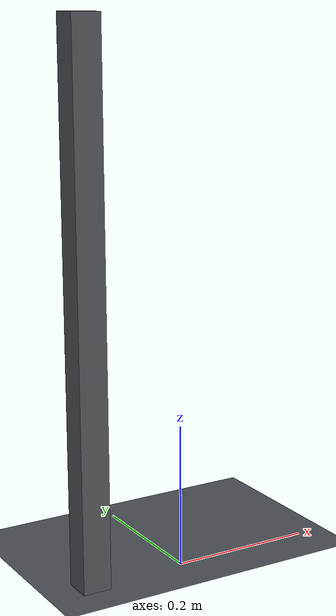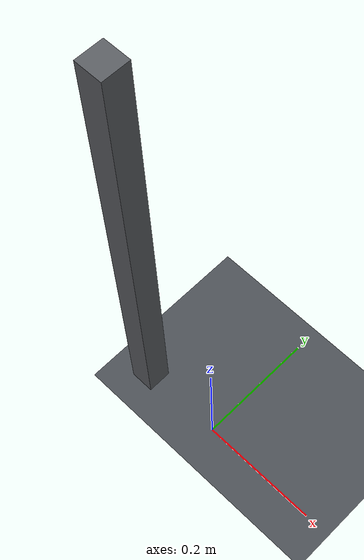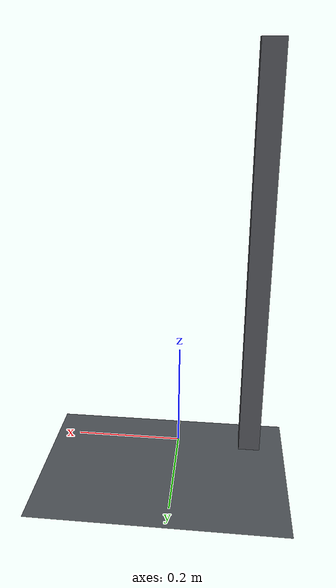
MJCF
<mujoco model="arms_rig">
  <option integrator="implicitfast"/>

  <asset>
    <texture name="grid" type="2d" builtin="checker" rgb1="0.26 0.28 0.30" rgb2="0.32 0.34 0.36"
             width="300" height="300"/>
    <material name="floor" texture="grid" texrepeat="6 6" reflectance="0.05"/>
    <material name="post" rgba="0.35 0.36 0.38 1"/>
  </asset>

  <worldbody>
    <light name="key" pos="1.5 -1.5 3" dir="-0.4 0.4 -1" directional="true" diffuse="0.7 0.7 0.7"/>
    <light name="fill" pos="-2 1 1.5" dir="0.7 -0.3 -0.5" directional="true" diffuse="0.35 0.45 0.7"/>
    <geom name="floor" type="plane" size="5 5 0.1" material="floor" contype="1" conaffinity="1"/>

    <body name="rig" pos="0 0 0">
      <inertial pos="0 0 0" mass="0" diaginertia="0 0 0"/>
      <geom name="rig_post" type="box" pos="-0.1393 0 0.374" size="0.02 0.02 0.374"
            material="post" contype="0" conaffinity="0" group="2"/>

      <site name="rig_origin" pos="0 0 0" size="0.001" rgba="0 0 0 0"/>
      <site name="left_arm_attachment"  pos="-0.1393  0.0788 0.7481224"
            quat="-0.28771429973882956 0.6946091769377477  0.2523195258530538 0.6091579679466975"
            size="0.001" rgba="0 0 0 0"/>
      <site name="right_arm_attachment" pos="-0.1393 -0.0782 0.7481224"
            quat=" 0.28771429973882956 0.6946091769377477 -0.2523195258530538 0.6091579679466975"
            size="0.001" rgba="0 0 0 0"/>
    </body>
  </worldbody>
</mujoco>
